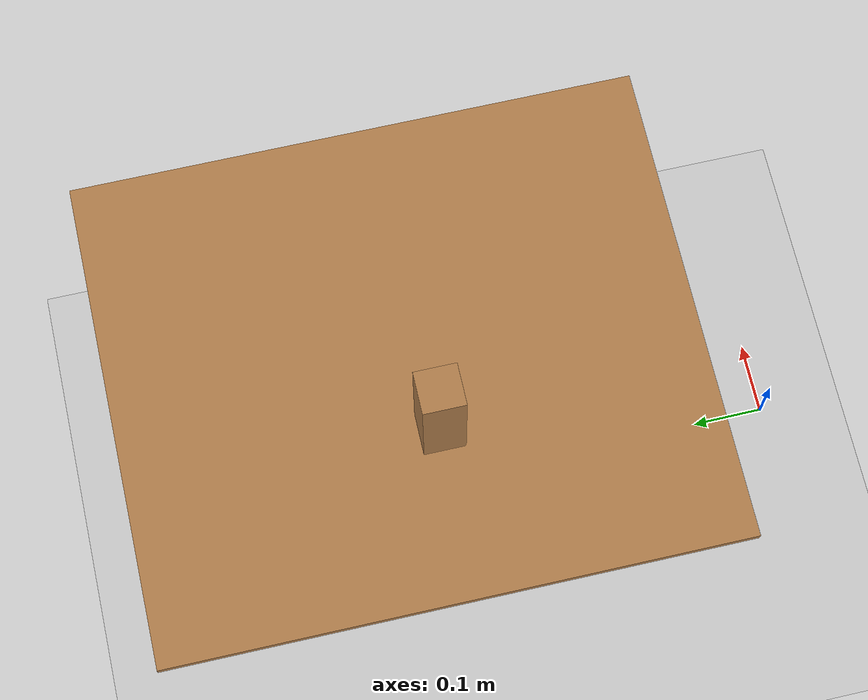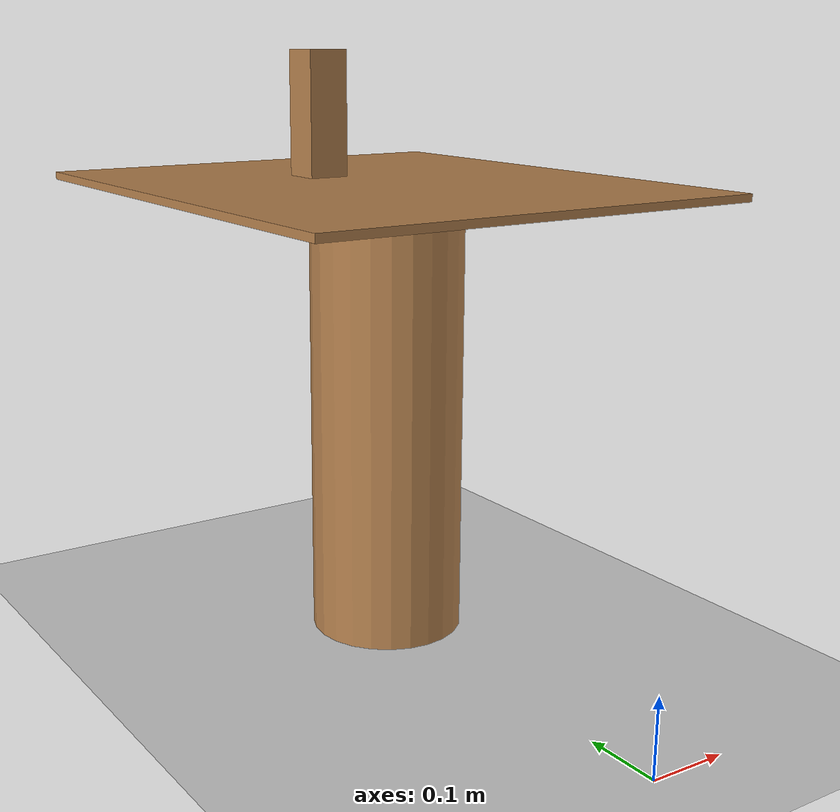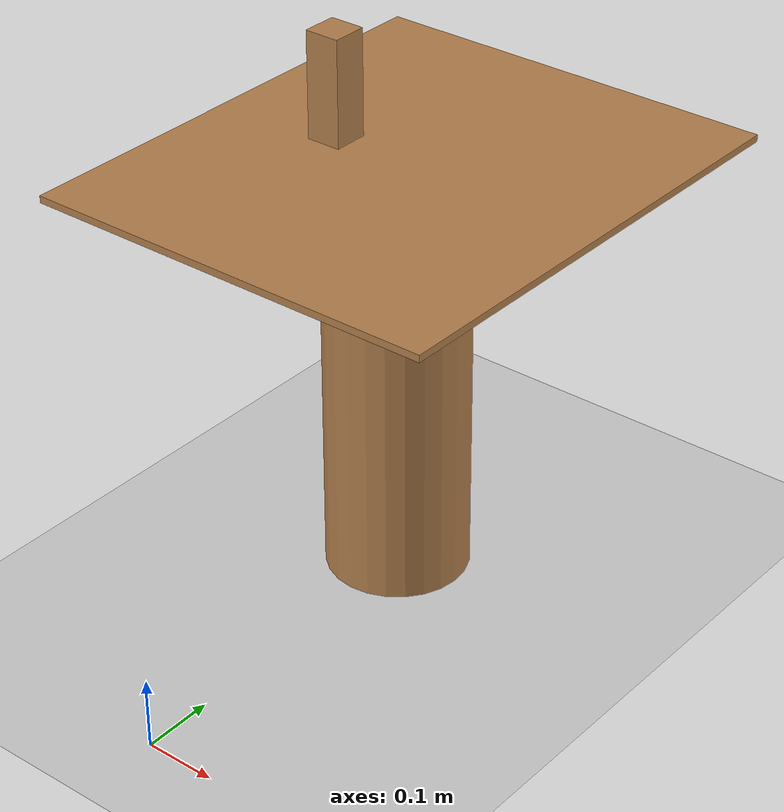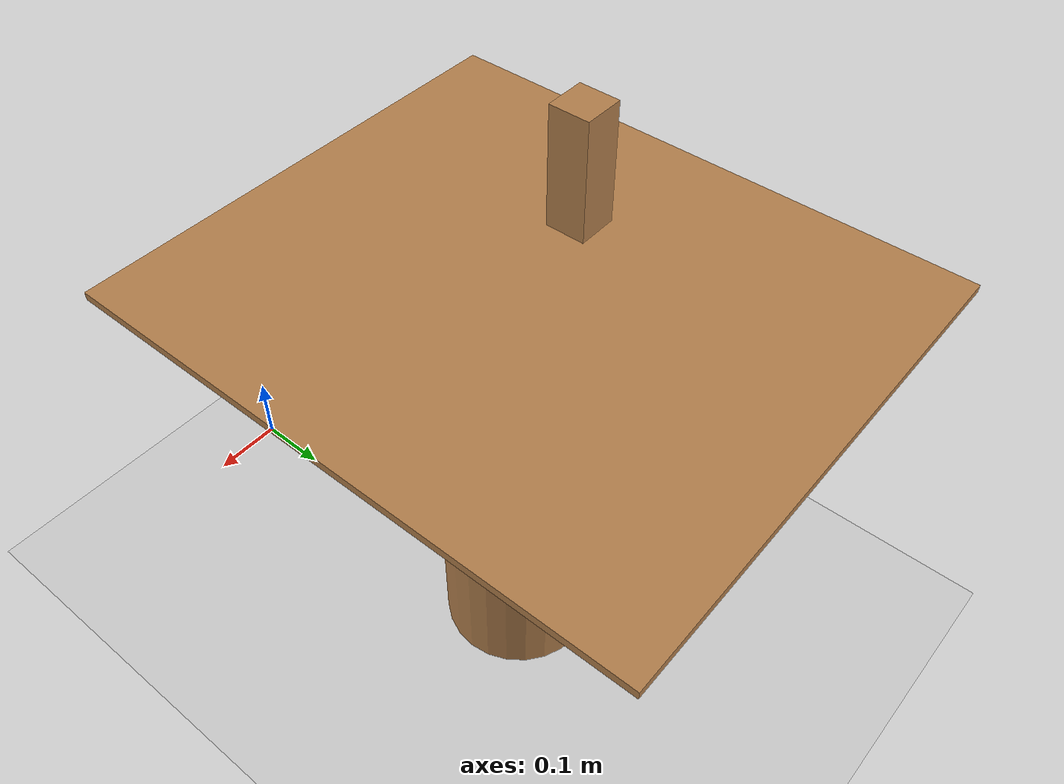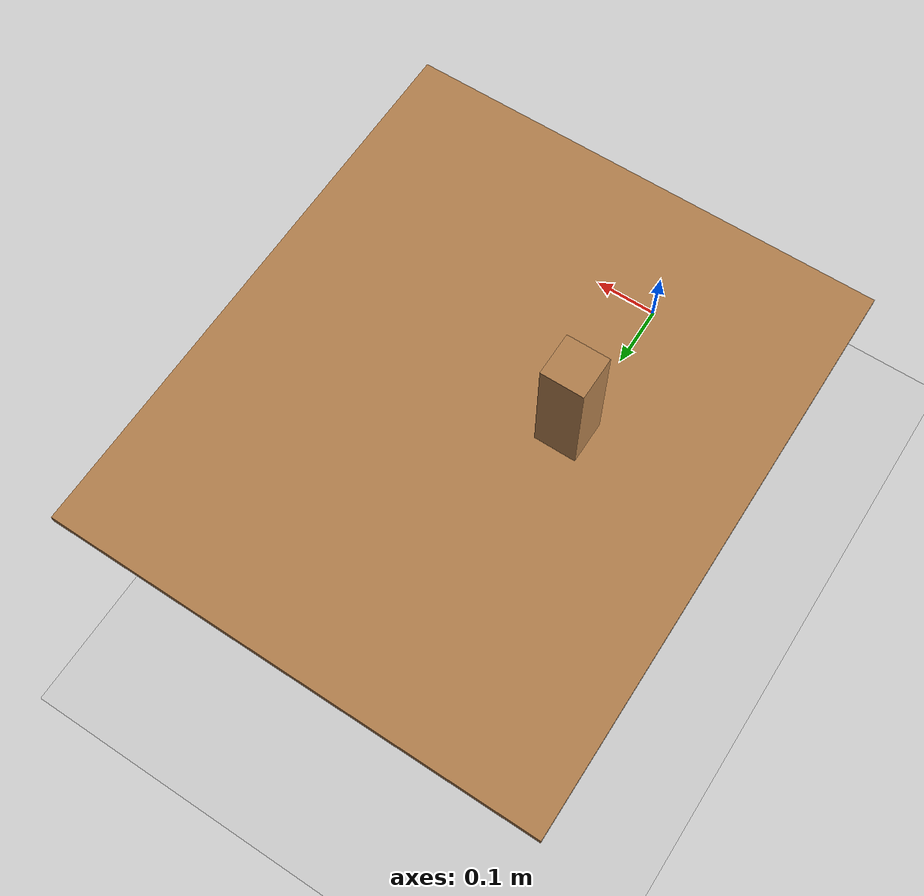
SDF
<sdf version="1.6">
 <world name="default">
  <model name="ground_plane">
   <static>1</static>
   <link name="link">
    <collision name="collision">
     <geometry><plane><normal>0 0 1</normal><size>100 100</size></plane></geometry>
     <surface>
      <contact><collide_bitmask>65535</collide_bitmask></contact>
      <friction><ode><mu>100</mu><mu2>50</mu2></ode></friction>
     </surface>
    </collision>
    <visual name="visual">
     <cast_shadows>0</cast_shadows>
     <geometry><plane><normal>0 0 1</normal><size>100 100</size></plane></geometry>
     <material>
      <script><uri>file://media/materials/scripts/gazebo.material</uri><name>Gazebo/Grey</name></script>
     </material>
    </visual>
   </link>
  </model>
  <model name="table_box">
   <link name="link_0">
    <pose>0.033333 0.013333 0.066667 0 -0 0</pose>
    <inertial>
     <mass>1</mass>
     <inertia>
      <ixx>0.166667</ixx>
      <ixy>0</ixy>
      <ixz>0</ixz>
      <iyy>0.166667</iyy>
      <iyz>0</iyz>
      <izz>0.166667</izz>
     </inertia>
    </inertial>
    <visual name="visual">
     <geometry><box><size>0.6 0.7 0.01</size></box></geometry>
     <material>
      <lighting>1</lighting>
      <script><uri>file://media/materials/scripts/gazebo.material</uri><name>Gazebo/Wood</name></script>
      <shader type="pixel"><normal_map>__default__</normal_map></shader>
      <ambient>0.3 0.3 0.3 1</ambient>
      <diffuse>0.7 0.7 0.7 1</diffuse>
      <specular>0.01 0.01 0.01 1</specular>
      <emissive>0 0 0 1</emissive>
     </material>
    </visual>
    <collision name="collision">
     <geometry><box><size>0.6 0.7 0.01</size></box></geometry>
     <surface>
      <friction>
       <ode><mu>1</mu><mu2>1</mu2><fdir1>0 0 0</fdir1><slip1>0</slip1><slip2>0</slip2></ode>
       <torsional>
        <coefficient>1</coefficient>
        <patch_radius>0</patch_radius>
        <surface_radius>0</surface_radius>
        <use_patch_radius>1</use_patch_radius>
        <ode><slip>0</slip></ode>
       </torsional>
      </friction>
      <bounce><restitution_coefficient>0</restitution_coefficient><threshold>1e+06</threshold></bounce>
      <contact>
       <collide_without_contact>0</collide_without_contact>
       <collide_without_contact_bitmask>1</collide_without_contact_bitmask>
       <collide_bitmask>1</collide_bitmask>
       <ode>
        <soft_cfm>0</soft_cfm>
        <soft_erp>0.2</soft_erp>
        <kp>1e+13</kp>
        <kd>1</kd>
        <max_vel>0.01</max_vel>
        <min_depth>0</min_depth>
       </ode>
       <bullet>
        <split_impulse>1</split_impulse>
        <split_impulse_penetration_threshold>-0.01</split_impulse_penetration_threshold>
        <soft_cfm>0</soft_cfm>
        <soft_erp>0.2</soft_erp>
        <kp>1e+13</kp>
        <kd>1</kd>
       </bullet>
      </contact>
     </surface>
    </collision>
   </link>
   <link name="link_1">
    <pose>0.033333 -0.006667 -0.228333 0 -0 0</pose>
    <inertial>
     <mass>1</mass>
     <inertia><ixx>0.145833</ixx><ixy>0</ixy><ixz>0</ixz><iyy>0.145833</iyy><iyz>0</iyz><izz>0.125</izz></inertia>
    </inertial>
    <visual name="visual">
     <geometry><cylinder><radius>0.1</radius><length>0.59</length></cylinder></geometry>
     <material>
      <lighting>1</lighting>
      <script><uri>file://media/materials/scripts/gazebo.material</uri><name>Gazebo/Wood</name></script>
      <shader type="pixel"><normal_map>__default__</normal_map></shader>
      <ambient>0.3 0.3 0.3 1</ambient>
      <diffuse>0.7 0.7 0.7 1</diffuse>
      <specular>0.01 0.01 0.01 1</specular>
      <emissive>0 0 0 1</emissive>
     </material>
    </visual>
    <collision name="collision">
     <geometry><cylinder><radius>0.1</radius><length>0.59</length></cylinder></geometry>
     <surface>
      <friction>
       <ode><mu>1000</mu><mu2>1000</mu2><fdir1>0 0 0</fdir1><slip1>0</slip1><slip2>0</slip2></ode>
       <torsional>
        <coefficient>1</coefficient>
        <patch_radius>0</patch_radius>
        <surface_radius>0</surface_radius>
        <use_patch_radius>1</use_patch_radius>
        <ode><slip>0</slip></ode>
       </torsional>
      </friction>
      <bounce><restitution_coefficient>0</restitution_coefficient><threshold>1e+06</threshold></bounce>
      <contact>
       <collide_without_contact>0</collide_without_contact>
       <collide_without_contact_bitmask>1</collide_without_contact_bitmask>
       <collide_bitmask>1</collide_bitmask>
       <ode>
        <soft_cfm>0</soft_cfm>
        <soft_erp>0.2</soft_erp>
        <kp>1e+13</kp>
        <kd>1</kd>
        <max_vel>0.01</max_vel>
        <min_depth>0</min_depth>
       </ode>
       <bullet>
        <split_impulse>1</split_impulse>
        <split_impulse_penetration_threshold>-0.01</split_impulse_penetration_threshold>
        <soft_cfm>0</soft_cfm>
        <soft_erp>0.2</soft_erp>
        <kp>1e+13</kp>
        <kd>1</kd>
       </bullet>
      </contact>
     </surface>
    </collision>
   </link>
   <link name="link_2">
    <pose>-0.066667 -0.006667 0.161667 0 -0 0</pose>
    <inertial>
     <mass>0.1</mass>
     <inertia>
      <ixx>0.166667</ixx>
      <ixy>0</ixy>
      <ixz>0</ixz>
      <iyy>0.166667</iyy>
      <iyz>0</iyz>
      <izz>0.166667</izz>
     </inertia>
    </inertial>
    <visual name="visual">
     <geometry><box><size>0.05 0.05 0.15</size></box></geometry>
     <material>
      <lighting>1</lighting>
      <script><uri>file://media/materials/scripts/gazebo.material</uri><name>Gazebo/Wood</name></script>
      <shader type="pixel"><normal_map>__default__</normal_map></shader>
      <ambient>0.3 0.3 0.3 1</ambient>
      <diffuse>0.7 0.7 0.7 1</diffuse>
      <specular>0.01 0.01 0.01 1</specular>
      <emissive>0 0 0 1</emissive>
     </material>
    </visual>
    <collision name="collision">
     <geometry><box><size>0.05 0.05 0.15</size></box></geometry>
     <surface>
      <friction>
       <ode><mu>1</mu><mu2>1</mu2><fdir1>0 0 0</fdir1><slip1>0</slip1><slip2>0</slip2></ode>
       <torsional>
        <coefficient>1</coefficient>
        <patch_radius>0</patch_radius>
        <surface_radius>0</surface_radius>
        <use_patch_radius>1</use_patch_radius>
        <ode><slip>0</slip></ode>
       </torsional>
      </friction>
      <bounce><restitution_coefficient>0</restitution_coefficient><threshold>1e+06</threshold></bounce>
      <contact>
       <collide_without_contact>0</collide_without_contact>
       <collide_without_contact_bitmask>1</collide_without_contact_bitmask>
       <collide_bitmask>1</collide_bitmask>
       <ode>
        <soft_cfm>0</soft_cfm>
        <soft_erp>0.2</soft_erp>
        <kp>1e+13</kp>
        <kd>1</kd>
        <max_vel>0.01</max_vel>
        <min_depth>0</min_depth>
       </ode>
       <bullet>
        <split_impulse>1</split_impulse>
        <split_impulse_penetration_threshold>-0.01</split_impulse_penetration_threshold>
        <soft_cfm>0</soft_cfm>
        <soft_erp>0.2</soft_erp>
        <kp>1e+13</kp>
        <kd>1</kd>
       </bullet>
      </contact>
     </surface>
    </collision>
   </link>
   <joint name="link_1_JOINT_0" type="fixed">
    <parent>link_1</parent>
    <child>link_0</child>
    <physics>
     <ode><limit><cfm>0</cfm><erp>0.2</erp></limit><suspension><cfm>0</cfm><erp>0.2</erp></suspension></ode>
    </physics>
   </joint>
   <static>0</static>
   <pose>-0.046362 0.511947 0.524793 0 -0 0</pose>
  </model>
 </world>
</sdf>
